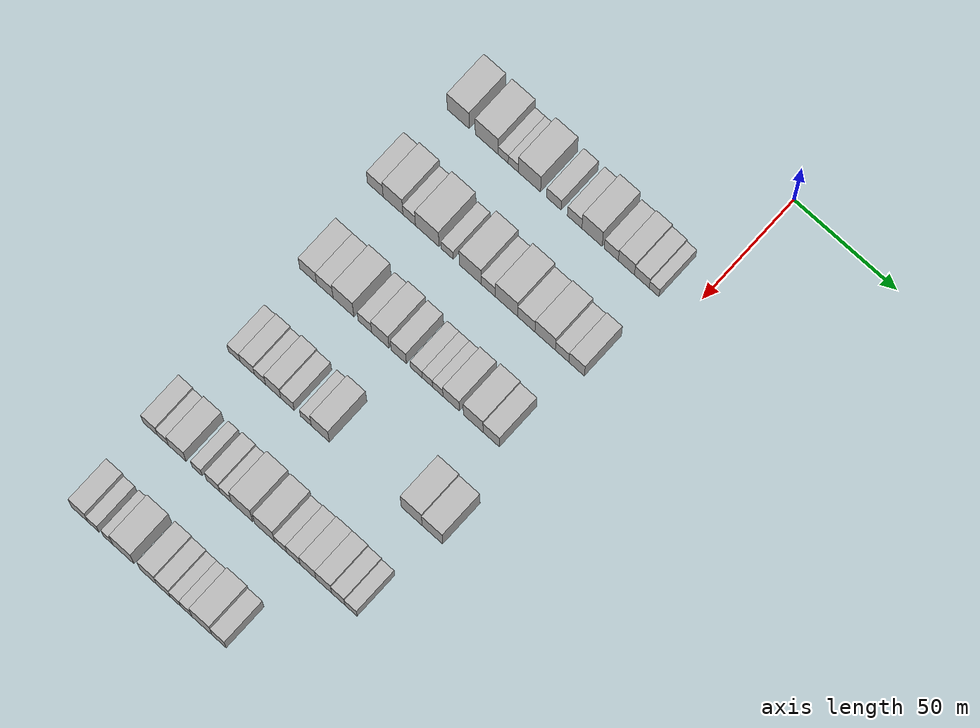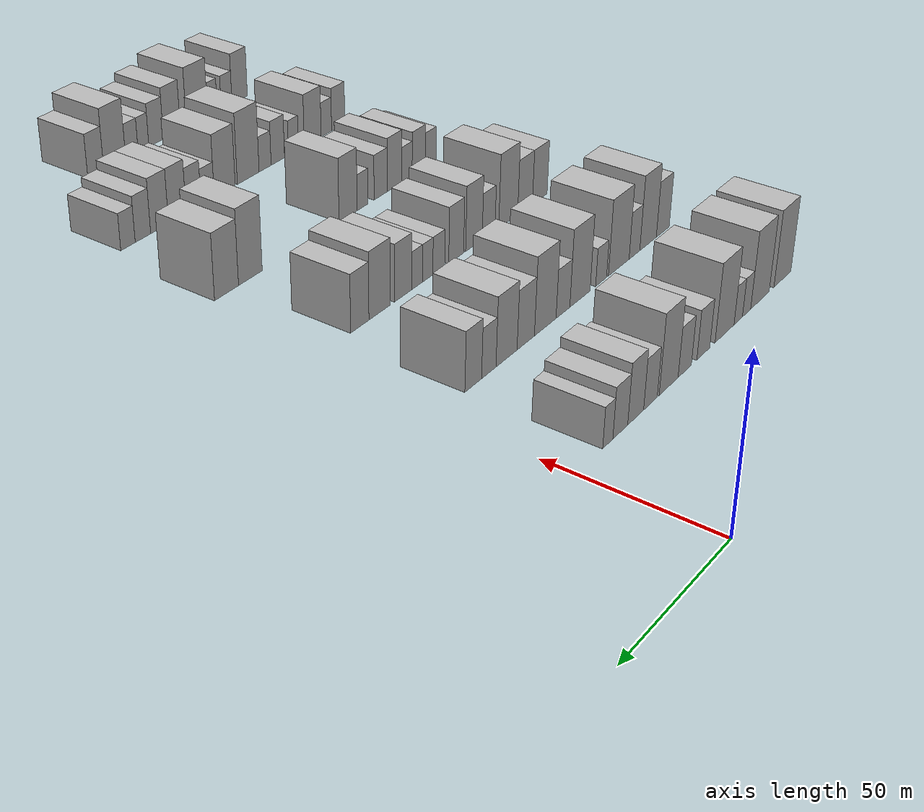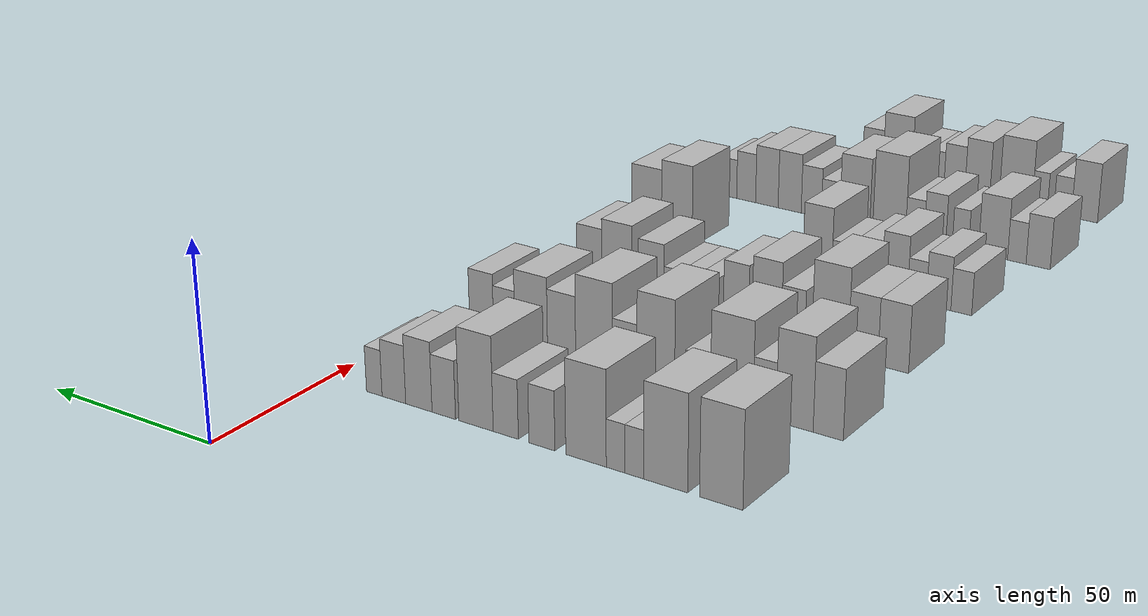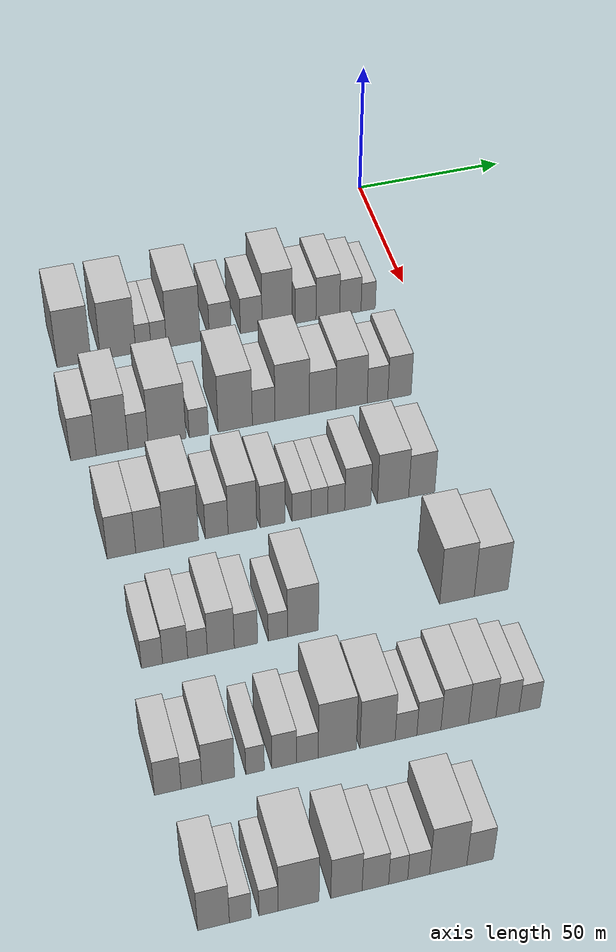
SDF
<sdf version="1.6">
 <world name="default">
  <model name="building_54">
   <static>1</static>
   <pose>50.0000 -111.0448 0 0.000000 0.000000 0.000000</pose>
   <link name="link">
    <pose>0 0 12.00 0 0 0</pose>
    <collision name="collision"><geometry><box><size>20.0000 10.8428 24.0000</size></box></geometry></collision>
    <visual name="visual">
     <cast_shadows>0</cast_shadows>
     <geometry><box><size>20.0000 10.8428 24.0000</size></box></geometry>
     <material>
      <script>
       <uri>model://HANNAS_wall/materials/scripts</uri>
       <uri>model://HANNAS_wall/materials/textures</uri>
       <name>vrc/HANNAS_wall</name>
      </script>
     </material>
    </visual>
   </link>
  </model>
  <model name="building_55">
   <static>1</static>
   <pose>50.0000 -96.9355 0 0.000000 0.000000 0.000000</pose>
   <link name="link">
    <pose>0 0 12.00 0 0 0</pose>
    <collision name="collision"><geometry><box><size>20.0000 11.3757 24.0000</size></box></geometry></collision>
    <visual name="visual">
     <cast_shadows>0</cast_shadows>
     <geometry><box><size>20.0000 11.3757 24.0000</size></box></geometry>
     <material>
      <script>
       <uri>model://HANNAS_wall/materials/scripts</uri>
       <uri>model://HANNAS_wall/materials/textures</uri>
       <name>vrc/HANNAS_wall</name>
      </script>
     </material>
    </visual>
   </link>
  </model>
  <model name="building_56">
   <static>1</static>
   <pose>50.0000 -88.7897 0 0.000000 0.000000 0.000000</pose>
   <link name="link">
    <pose>0 0 6.00 0 0 0</pose>
    <collision name="collision"><geometry><box><size>20.0000 4.9160 12.0000</size></box></geometry></collision>
    <visual name="visual">
     <cast_shadows>0</cast_shadows>
     <geometry><box><size>20.0000 4.9160 12.0000</size></box></geometry>
     <material>
      <script>
       <uri>model://HANNAS_wall/materials/scripts</uri>
       <uri>model://HANNAS_wall/materials/textures</uri>
       <name>vrc/HANNAS_wall</name>
      </script>
     </material>
    </visual>
   </link>
  </model>
  <model name="building_57">
   <static>1</static>
   <pose>50.0000 -83.8516 0 0.000000 0.000000 0.000000</pose>
   <link name="link">
    <pose>0 0 6.00 0 0 0</pose>
    <collision name="collision"><geometry><box><size>20.0000 4.9602 12.0000</size></box></geometry></collision>
    <visual name="visual">
     <cast_shadows>0</cast_shadows>
     <geometry><box><size>20.0000 4.9602 12.0000</size></box></geometry>
     <material>
      <script>
       <uri>model://HANNAS_wall/materials/scripts</uri>
       <uri>model://HANNAS_wall/materials/textures</uri>
       <name>vrc/HANNAS_wall</name>
      </script>
     </material>
    </visual>
   </link>
  </model>
  <model name="building_58">
   <static>1</static>
   <pose>50.0000 -75.8933 0 0.000000 0.000000 0.000000</pose>
   <link name="link">
    <pose>0 0 12.00 0 0 0</pose>
    <collision name="collision"><geometry><box><size>20.0000 10.9565 24.0000</size></box></geometry></collision>
    <visual name="visual">
     <cast_shadows>0</cast_shadows>
     <geometry><box><size>20.0000 10.9565 24.0000</size></box></geometry>
     <material>
      <script>
       <uri>model://HANNAS_wall/materials/scripts</uri>
       <uri>model://HANNAS_wall/materials/textures</uri>
       <name>vrc/HANNAS_wall</name>
      </script>
     </material>
    </visual>
   </link>
  </model>
  <model name="building_59">
   <static>1</static>
   <pose>50.0000 -63.8269 0 0.000000 0.000000 0.000000</pose>
   <link name="link">
    <pose>0 0 7.50 0 0 0</pose>
    <collision name="collision"><geometry><box><size>20.0000 7.1763 15.0000</size></box></geometry></collision>
    <visual name="visual">
     <cast_shadows>0</cast_shadows>
     <geometry><box><size>20.0000 7.1763 15.0000</size></box></geometry>
     <material>
      <script>
       <uri>model://HANNAS_wall/materials/scripts</uri>
       <uri>model://HANNAS_wall/materials/textures</uri>
       <name>vrc/HANNAS_wall</name>
      </script>
     </material>
    </visual>
   </link>
  </model>
  <model name="building_60">
   <static>1</static>
   <pose>50.0000 -53.6704 0 0.000000 0.000000 0.000000</pose>
   <link name="link">
    <pose>0 0 7.50 0 0 0</pose>
    <collision name="collision"><geometry><box><size>20.0000 7.1367 15.0000</size></box></geometry></collision>
    <visual name="visual">
     <cast_shadows>0</cast_shadows>
     <geometry><box><size>20.0000 7.1367 15.0000</size></box></geometry>
     <material>
      <script>
       <uri>model://HANNAS_wall/materials/scripts</uri>
       <uri>model://HANNAS_wall/materials/textures</uri>
       <name>vrc/HANNAS_wall</name>
      </script>
     </material>
    </visual>
   </link>
  </model>
  <model name="building_61">
   <static>1</static>
   <pose>50.0000 -45.1412 0 0.000000 0.000000 0.000000</pose>
   <link name="link">
    <pose>0 0 12.00 0 0 0</pose>
    <collision name="collision"><geometry><box><size>20.0000 9.9217 24.0000</size></box></geometry></collision>
    <visual name="visual">
     <cast_shadows>0</cast_shadows>
     <geometry><box><size>20.0000 9.9217 24.0000</size></box></geometry>
     <material>
      <script>
       <uri>model://HANNAS_wall/materials/scripts</uri>
       <uri>model://HANNAS_wall/materials/textures</uri>
       <name>vrc/HANNAS_wall</name>
      </script>
     </material>
    </visual>
   </link>
  </model>
  <model name="building_62">
   <static>1</static>
   <pose>50.0000 -35.7157 0 0.000000 0.000000 0.000000</pose>
   <link name="link">
    <pose>0 0 7.50 0 0 0</pose>
    <collision name="collision"><geometry><box><size>20.0000 6.9293 15.0000</size></box></geometry></collision>
    <visual name="visual">
     <cast_shadows>0</cast_shadows>
     <geometry><box><size>20.0000 6.9293 15.0000</size></box></geometry>
     <material>
      <script>
       <uri>model://HANNAS_wall/materials/scripts</uri>
       <uri>model://HANNAS_wall/materials/textures</uri>
       <name>vrc/HANNAS_wall</name>
      </script>
     </material>
    </visual>
   </link>
  </model>
  <model name="building_63">
   <static>1</static>
   <pose>50.0000 -28.3047 0 0.000000 0.000000 0.000000</pose>
   <link name="link">
    <pose>0 0 9.00 0 0 0</pose>
    <collision name="collision"><geometry><box><size>20.0000 7.8925 18.0000</size></box></geometry></collision>
    <visual name="visual">
     <cast_shadows>0</cast_shadows>
     <geometry><box><size>20.0000 7.8925 18.0000</size></box></geometry>
     <material>
      <script>
       <uri>model://HANNAS_wall/materials/scripts</uri>
       <uri>model://HANNAS_wall/materials/textures</uri>
       <name>vrc/HANNAS_wall</name>
      </script>
     </material>
    </visual>
   </link>
  </model>
  <model name="building_64">
   <static>1</static>
   <pose>50.0000 -20.7568 0 0.000000 0.000000 0.000000</pose>
   <link name="link">
    <pose>0 0 7.50 0 0 0</pose>
    <collision name="collision"><geometry><box><size>20.0000 7.2033 15.0000</size></box></geometry></collision>
    <visual name="visual">
     <cast_shadows>0</cast_shadows>
     <geometry><box><size>20.0000 7.2033 15.0000</size></box></geometry>
     <material>
      <script>
       <uri>model://HANNAS_wall/materials/scripts</uri>
       <uri>model://HANNAS_wall/materials/textures</uri>
       <name>vrc/HANNAS_wall</name>
      </script>
     </material>
    </visual>
   </link>
  </model>
  <model name="building_65">
   <static>1</static>
   <pose>50.0000 -14.7513 0 0.000000 0.000000 0.000000</pose>
   <link name="link">
    <pose>0 0 6.00 0 0 0</pose>
    <collision name="collision"><geometry><box><size>20.0000 4.8078 12.0000</size></box></geometry></collision>
    <visual name="visual">
     <cast_shadows>0</cast_shadows>
     <geometry><box><size>20.0000 4.8078 12.0000</size></box></geometry>
     <material>
      <script>
       <uri>model://HANNAS_wall/materials/scripts</uri>
       <uri>model://HANNAS_wall/materials/textures</uri>
       <name>vrc/HANNAS_wall</name>
      </script>
     </material>
    </visual>
   </link>
  </model>
  <model name="building_196">
   <static>1</static>
   <pose>90.0000 -115.4978 0 0.000000 0.000000 0.000000</pose>
   <link name="link">
    <pose>0 0 9.00 0 0 0</pose>
    <collision name="collision"><geometry><box><size>20.0000 7.7908 18.0000</size></box></geometry></collision>
    <visual name="visual">
     <cast_shadows>0</cast_shadows>
     <geometry><box><size>20.0000 7.7908 18.0000</size></box></geometry>
     <material>
      <script>
       <uri>model://HANNAS_wall/materials/scripts</uri>
       <uri>model://HANNAS_wall/materials/textures</uri>
       <name>vrc/HANNAS_wall</name>
      </script>
     </material>
    </visual>
   </link>
  </model>
  <model name="building_197">
   <static>1</static>
   <pose>90.0000 -106.7278 0 0.000000 0.000000 0.000000</pose>
   <link name="link">
    <pose>0 0 12.00 0 0 0</pose>
    <collision name="collision"><geometry><box><size>20.0000 9.7493 24.0000</size></box></geometry></collision>
    <visual name="visual">
     <cast_shadows>0</cast_shadows>
     <geometry><box><size>20.0000 9.7493 24.0000</size></box></geometry>
     <material>
      <script>
       <uri>model://HANNAS_wall/materials/scripts</uri>
       <uri>model://HANNAS_wall/materials/textures</uri>
       <name>vrc/HANNAS_wall</name>
      </script>
     </material>
    </visual>
   </link>
  </model>
  <model name="building_198">
   <static>1</static>
   <pose>90.0000 -98.7552 0 0.000000 0.000000 0.000000</pose>
   <link name="link">
    <pose>0 0 7.50 0 0 0</pose>
    <collision name="collision"><geometry><box><size>20.0000 6.1960 15.0000</size></box></geometry></collision>
    <visual name="visual">
     <cast_shadows>0</cast_shadows>
     <geometry><box><size>20.0000 6.1960 15.0000</size></box></geometry>
     <material>
      <script>
       <uri>model://HANNAS_wall/materials/scripts</uri>
       <uri>model://HANNAS_wall/materials/textures</uri>
       <name>vrc/HANNAS_wall</name>
      </script>
     </material>
    </visual>
   </link>
  </model>
  <model name="building_199">
   <static>1</static>
   <pose>90.0000 -89.8446 0 0.000000 0.000000 0.000000</pose>
   <link name="link">
    <pose>0 0 12.00 0 0 0</pose>
    <collision name="collision"><geometry><box><size>20.0000 11.6251 24.0000</size></box></geometry></collision>
    <visual name="visual">
     <cast_shadows>0</cast_shadows>
     <geometry><box><size>20.0000 11.6251 24.0000</size></box></geometry>
     <material>
      <script>
       <uri>model://HANNAS_wall/materials/scripts</uri>
       <uri>model://HANNAS_wall/materials/textures</uri>
       <name>vrc/HANNAS_wall</name>
      </script>
     </material>
    </visual>
   </link>
  </model>
  <model name="building_200">
   <static>1</static>
   <pose>90.0000 -80.0395 0 0.000000 0.000000 0.000000</pose>
   <link name="link">
    <pose>0 0 6.00 0 0 0</pose>
    <collision name="collision"><geometry><box><size>20.0000 5.9850 12.0000</size></box></geometry></collision>
    <visual name="visual">
     <cast_shadows>0</cast_shadows>
     <geometry><box><size>20.0000 5.9850 12.0000</size></box></geometry>
     <material>
      <script>
       <uri>model://HANNAS_wall/materials/scripts</uri>
       <uri>model://HANNAS_wall/materials/textures</uri>
       <name>vrc/HANNAS_wall</name>
      </script>
     </material>
    </visual>
   </link>
  </model>
  <model name="building_201">
   <static>1</static>
   <pose>90.0000 -68.6933 0 0.000000 0.000000 0.000000</pose>
   <link name="link">
    <pose>0 0 12.00 0 0 0</pose>
    <collision name="collision"><geometry><box><size>20.0000 10.7074 24.0000</size></box></geometry></collision>
    <visual name="visual">
     <cast_shadows>0</cast_shadows>
     <geometry><box><size>20.0000 10.7074 24.0000</size></box></geometry>
     <material>
      <script>
       <uri>model://HANNAS_wall/materials/scripts</uri>
       <uri>model://HANNAS_wall/materials/textures</uri>
       <name>vrc/HANNAS_wall</name>
      </script>
     </material>
    </visual>
   </link>
  </model>
  <model name="building_202">
   <static>1</static>
   <pose>90.0000 -59.7855 0 0.000000 0.000000 0.000000</pose>
   <link name="link">
    <pose>0 0 7.50 0 0 0</pose>
    <collision name="collision"><geometry><box><size>20.0000 7.1082 15.0000</size></box></geometry></collision>
    <visual name="visual">
     <cast_shadows>0</cast_shadows>
     <geometry><box><size>20.0000 7.1082 15.0000</size></box></geometry>
     <material>
      <script>
       <uri>model://HANNAS_wall/materials/scripts</uri>
       <uri>model://HANNAS_wall/materials/textures</uri>
       <name>vrc/HANNAS_wall</name>
      </script>
     </material>
    </visual>
   </link>
  </model>
  <model name="building_203">
   <static>1</static>
   <pose>90.0000 -50.8051 0 0.000000 0.000000 0.000000</pose>
   <link name="link">
    <pose>0 0 12.00 0 0 0</pose>
    <collision name="collision"><geometry><box><size>20.0000 10.8525 24.0000</size></box></geometry></collision>
    <visual name="visual">
     <cast_shadows>0</cast_shadows>
     <geometry><box><size>20.0000 10.8525 24.0000</size></box></geometry>
     <material>
      <script>
       <uri>model://HANNAS_wall/materials/scripts</uri>
       <uri>model://HANNAS_wall/materials/textures</uri>
       <name>vrc/HANNAS_wall</name>
      </script>
     </material>
    </visual>
   </link>
  </model>
  <model name="building_204">
   <static>1</static>
   <pose>90.0000 -41.1457 0 0.000000 0.000000 0.000000</pose>
   <link name="link">
    <pose>0 0 9.00 0 0 0</pose>
    <collision name="collision"><geometry><box><size>20.0000 8.4663 18.0000</size></box></geometry></collision>
    <visual name="visual">
     <cast_shadows>0</cast_shadows>
     <geometry><box><size>20.0000 8.4663 18.0000</size></box></geometry>
     <material>
      <script>
       <uri>model://HANNAS_wall/materials/scripts</uri>
       <uri>model://HANNAS_wall/materials/textures</uri>
       <name>vrc/HANNAS_wall</name>
      </script>
     </material>
    </visual>
   </link>
  </model>
  <model name="building_205">
   <static>1</static>
   <pose>90.0000 -31.9233 0 0.000000 0.000000 0.000000</pose>
   <link name="link">
    <pose>0 0 10.50 0 0 0</pose>
    <collision name="collision"><geometry><box><size>20.0000 9.9786 21.0000</size></box></geometry></collision>
    <visual name="visual">
     <cast_shadows>0</cast_shadows>
     <geometry><box><size>20.0000 9.9786 21.0000</size></box></geometry>
     <material>
      <script>
       <uri>model://HANNAS_wall/materials/scripts</uri>
       <uri>model://HANNAS_wall/materials/textures</uri>
       <name>vrc/HANNAS_wall</name>
      </script>
     </material>
    </visual>
   </link>
  </model>
  <model name="building_206">
   <static>1</static>
   <pose>90.0000 -23.6068 0 0.000000 0.000000 0.000000</pose>
   <link name="link">
    <pose>0 0 7.50 0 0 0</pose>
    <collision name="collision"><geometry><box><size>20.0000 6.6543 15.0000</size></box></geometry></collision>
    <visual name="visual">
     <cast_shadows>0</cast_shadows>
     <geometry><box><size>20.0000 6.6543 15.0000</size></box></geometry>
     <material>
      <script>
       <uri>model://HANNAS_wall/materials/scripts</uri>
       <uri>model://HANNAS_wall/materials/textures</uri>
       <name>vrc/HANNAS_wall</name>
      </script>
     </material>
    </visual>
   </link>
  </model>
  <model name="building_207">
   <static>1</static>
   <pose>90.0000 -16.5090 0 0.000000 0.000000 0.000000</pose>
   <link name="link">
    <pose>0 0 9.00 0 0 0</pose>
    <collision name="collision"><geometry><box><size>20.0000 7.5413 18.0000</size></box></geometry></collision>
    <visual name="visual">
     <cast_shadows>0</cast_shadows>
     <geometry><box><size>20.0000 7.5413 18.0000</size></box></geometry>
     <material>
      <script>
       <uri>model://HANNAS_wall/materials/scripts</uri>
       <uri>model://HANNAS_wall/materials/textures</uri>
       <name>vrc/HANNAS_wall</name>
      </script>
     </material>
    </visual>
   </link>
  </model>
  <model name="building_333">
   <static>1</static>
   <pose>130.0000 -111.9300 0 0.000000 0.000000 0.000000</pose>
   <link name="link">
    <pose>0 0 9.00 0 0 0</pose>
    <collision name="collision"><geometry><box><size>20.0000 8.3504 18.0000</size></box></geometry></collision>
    <visual name="visual">
     <cast_shadows>0</cast_shadows>
     <geometry><box><size>20.0000 8.3504 18.0000</size></box></geometry>
     <material>
      <script>
       <uri>model://HANNAS_wall/materials/scripts</uri>
       <uri>model://HANNAS_wall/materials/textures</uri>
       <name>vrc/HANNAS_wall</name>
      </script>
     </material>
    </visual>
   </link>
  </model>
  <model name="building_334">
   <static>1</static>
   <pose>130.0000 -103.6656 0 0.000000 0.000000 0.000000</pose>
   <link name="link">
    <pose>0 0 9.00 0 0 0</pose>
    <collision name="collision"><geometry><box><size>20.0000 8.1784 18.0000</size></box></geometry></collision>
    <visual name="visual">
     <cast_shadows>0</cast_shadows>
     <geometry><box><size>20.0000 8.1784 18.0000</size></box></geometry>
     <material>
      <script>
       <uri>model://HANNAS_wall/materials/scripts</uri>
       <uri>model://HANNAS_wall/materials/textures</uri>
       <name>vrc/HANNAS_wall</name>
      </script>
     </material>
    </visual>
   </link>
  </model>
  <model name="building_335">
   <static>1</static>
   <pose>130.0000 -94.4496 0 0.000000 0.000000 0.000000</pose>
   <link name="link">
    <pose>0 0 12.00 0 0 0</pose>
    <collision name="collision"><geometry><box><size>20.0000 10.2536 24.0000</size></box></geometry></collision>
    <visual name="visual">
     <cast_shadows>0</cast_shadows>
     <geometry><box><size>20.0000 10.2536 24.0000</size></box></geometry>
     <material>
      <script>
       <uri>model://HANNAS_wall/materials/scripts</uri>
       <uri>model://HANNAS_wall/materials/textures</uri>
       <name>vrc/HANNAS_wall</name>
      </script>
     </material>
    </visual>
   </link>
  </model>
  <model name="building_336">
   <static>1</static>
   <pose>130.0000 -83.9489 0 0.000000 0.000000 0.000000</pose>
   <link name="link">
    <pose>0 0 7.50 0 0 0</pose>
    <collision name="collision"><geometry><box><size>20.0000 6.7476 15.0000</size></box></geometry></collision>
    <visual name="visual">
     <cast_shadows>0</cast_shadows>
     <geometry><box><size>20.0000 6.7476 15.0000</size></box></geometry>
     <material>
      <script>
       <uri>model://HANNAS_wall/materials/scripts</uri>
       <uri>model://HANNAS_wall/materials/textures</uri>
       <name>vrc/HANNAS_wall</name>
      </script>
     </material>
    </visual>
   </link>
  </model>
  <model name="building_337">
   <static>1</static>
   <pose>130.0000 -76.3089 0 0.000000 0.000000 0.000000</pose>
   <link name="link">
    <pose>0 0 10.50 0 0 0</pose>
    <collision name="collision"><geometry><box><size>20.0000 8.5325 21.0000</size></box></geometry></collision>
    <visual name="visual">
     <cast_shadows>0</cast_shadows>
     <geometry><box><size>20.0000 8.5325 21.0000</size></box></geometry>
     <material>
      <script>
       <uri>model://HANNAS_wall/materials/scripts</uri>
       <uri>model://HANNAS_wall/materials/textures</uri>
       <name>vrc/HANNAS_wall</name>
      </script>
     </material>
    </visual>
   </link>
  </model>
  <model name="building_338">
   <static>1</static>
   <pose>130.0000 -67.2926 0 0.000000 0.000000 0.000000</pose>
   <link name="link">
    <pose>0 0 9.00 0 0 0</pose>
    <collision name="collision"><geometry><box><size>20.0000 7.5001 18.0000</size></box></geometry></collision>
    <visual name="visual">
     <cast_shadows>0</cast_shadows>
     <geometry><box><size>20.0000 7.5001 18.0000</size></box></geometry>
     <material>
      <script>
       <uri>model://HANNAS_wall/materials/scripts</uri>
       <uri>model://HANNAS_wall/materials/textures</uri>
       <name>vrc/HANNAS_wall</name>
      </script>
     </material>
    </visual>
   </link>
  </model>
  <model name="building_339">
   <static>1</static>
   <pose>130.0000 -58.6385 0 0.000000 0.000000 0.000000</pose>
   <link name="link">
    <pose>0 0 6.00 0 0 0</pose>
    <collision name="collision"><geometry><box><size>20.0000 5.8081 12.0000</size></box></geometry></collision>
    <visual name="visual">
     <cast_shadows>0</cast_shadows>
     <geometry><box><size>20.0000 5.8081 12.0000</size></box></geometry>
     <material>
      <script>
       <uri>model://HANNAS_wall/materials/scripts</uri>
       <uri>model://HANNAS_wall/materials/textures</uri>
       <name>vrc/HANNAS_wall</name>
      </script>
     </material>
    </visual>
   </link>
  </model>
  <model name="building_340">
   <static>1</static>
   <pose>130.0000 -53.2350 0 0.000000 0.000000 0.000000</pose>
   <link name="link">
    <pose>0 0 6.00 0 0 0</pose>
    <collision name="collision"><geometry><box><size>20.0000 4.9991 12.0000</size></box></geometry></collision>
    <visual name="visual">
     <cast_shadows>0</cast_shadows>
     <geometry><box><size>20.0000 4.9991 12.0000</size></box></geometry>
     <material>
      <script>
       <uri>model://HANNAS_wall/materials/scripts</uri>
       <uri>model://HANNAS_wall/materials/textures</uri>
       <name>vrc/HANNAS_wall</name>
      </script>
     </material>
    </visual>
   </link>
  </model>
  <model name="building_341">
   <static>1</static>
   <pose>130.0000 -48.1596 0 0.000000 0.000000 0.000000</pose>
   <link name="link">
    <pose>0 0 6.00 0 0 0</pose>
    <collision name="collision"><geometry><box><size>20.0000 5.1517 12.0000</size></box></geometry></collision>
    <visual name="visual">
     <cast_shadows>0</cast_shadows>
     <geometry><box><size>20.0000 5.1517 12.0000</size></box></geometry>
     <material>
      <script>
       <uri>model://HANNAS_wall/materials/scripts</uri>
       <uri>model://HANNAS_wall/materials/textures</uri>
       <name>vrc/HANNAS_wall</name>
      </script>
     </material>
    </visual>
   </link>
  </model>
  <model name="building_342">
   <static>1</static>
   <pose>130.0000 -41.5993 0 0.000000 0.000000 0.000000</pose>
   <link name="link">
    <pose>0 0 9.00 0 0 0</pose>
    <collision name="collision"><geometry><box><size>20.0000 7.9688 18.0000</size></box></geometry></collision>
    <visual name="visual">
     <cast_shadows>0</cast_shadows>
     <geometry><box><size>20.0000 7.9688 18.0000</size></box></geometry>
     <material>
      <script>
       <uri>model://HANNAS_wall/materials/scripts</uri>
       <uri>model://HANNAS_wall/materials/textures</uri>
       <name>vrc/HANNAS_wall</name>
      </script>
     </material>
    </visual>
   </link>
  </model>
  <model name="building_343">
   <static>1</static>
   <pose>130.0000 -30.8135 0 0.000000 0.000000 0.000000</pose>
   <link name="link">
    <pose>0 0 10.50 0 0 0</pose>
    <collision name="collision"><geometry><box><size>20.0000 9.6029 21.0000</size></box></geometry></collision>
    <visual name="visual">
     <cast_shadows>0</cast_shadows>
     <geometry><box><size>20.0000 9.6029 21.0000</size></box></geometry>
     <material>
      <script>
       <uri>model://HANNAS_wall/materials/scripts</uri>
       <uri>model://HANNAS_wall/materials/textures</uri>
       <name>vrc/HANNAS_wall</name>
      </script>
     </material>
    </visual>
   </link>
  </model>
  <model name="building_344">
   <static>1</static>
   <pose>130.0000 -21.9859 0 0.000000 0.000000 0.000000</pose>
   <link name="link">
    <pose>0 0 9.00 0 0 0</pose>
    <collision name="collision"><geometry><box><size>20.0000 8.0523 18.0000</size></box></geometry></collision>
    <visual name="visual">
     <cast_shadows>0</cast_shadows>
     <geometry><box><size>20.0000 8.0523 18.0000</size></box></geometry>
     <material>
      <script>
       <uri>model://HANNAS_wall/materials/scripts</uri>
       <uri>model://HANNAS_wall/materials/textures</uri>
       <name>vrc/HANNAS_wall</name>
      </script>
     </material>
    </visual>
   </link>
  </model>
  <model name="building_469">
   <static>1</static>
   <pose>170.0000 -111.5075 0 0.000000 0.000000 0.000000</pose>
   <link name="link">
    <pose>0 0 6.00 0 0 0</pose>
    <collision name="collision"><geometry><box><size>20.0000 5.8818 12.0000</size></box></geometry></collision>
    <visual name="visual">
     <cast_shadows>0</cast_shadows>
     <geometry><box><size>20.0000 5.8818 12.0000</size></box></geometry>
     <material>
      <script>
       <uri>model://HANNAS_wall/materials/scripts</uri>
       <uri>model://HANNAS_wall/materials/textures</uri>
       <name>vrc/HANNAS_wall</name>
      </script>
     </material>
    </visual>
   </link>
  </model>
  <model name="building_470">
   <static>1</static>
   <pose>170.0000 -105.0584 0 0.000000 0.000000 0.000000</pose>
   <link name="link">
    <pose>0 0 7.50 0 0 0</pose>
    <collision name="collision"><geometry><box><size>20.0000 7.0163 15.0000</size></box></geometry></collision>
    <visual name="visual">
     <cast_shadows>0</cast_shadows>
     <geometry><box><size>20.0000 7.0163 15.0000</size></box></geometry>
     <material>
      <script>
       <uri>model://HANNAS_wall/materials/scripts</uri>
       <uri>model://HANNAS_wall/materials/textures</uri>
       <name>vrc/HANNAS_wall</name>
      </script>
     </material>
    </visual>
   </link>
  </model>
  <model name="building_471">
   <static>1</static>
   <pose>170.0000 -98.8064 0 0.000000 0.000000 0.000000</pose>
   <link name="link">
    <pose>0 0 6.00 0 0 0</pose>
    <collision name="collision"><geometry><box><size>20.0000 5.4877 12.0000</size></box></geometry></collision>
    <visual name="visual">
     <cast_shadows>0</cast_shadows>
     <geometry><box><size>20.0000 5.4877 12.0000</size></box></geometry>
     <material>
      <script>
       <uri>model://HANNAS_wall/materials/scripts</uri>
       <uri>model://HANNAS_wall/materials/textures</uri>
       <name>vrc/HANNAS_wall</name>
      </script>
     </material>
    </visual>
   </link>
  </model>
  <model name="building_472">
   <static>1</static>
   <pose>170.0000 -92.2743 0 0.000000 0.000000 0.000000</pose>
   <link name="link">
    <pose>0 0 9.00 0 0 0</pose>
    <collision name="collision"><geometry><box><size>20.0000 7.5765 18.0000</size></box></geometry></collision>
    <visual name="visual">
     <cast_shadows>0</cast_shadows>
     <geometry><box><size>20.0000 7.5765 18.0000</size></box></geometry>
     <material>
      <script>
       <uri>model://HANNAS_wall/materials/scripts</uri>
       <uri>model://HANNAS_wall/materials/textures</uri>
       <name>vrc/HANNAS_wall</name>
      </script>
     </material>
    </visual>
   </link>
  </model>
  <model name="building_473">
   <static>1</static>
   <pose>170.0000 -85.1839 0 0.000000 0.000000 0.000000</pose>
   <link name="link">
    <pose>0 0 7.50 0 0 0</pose>
    <collision name="collision"><geometry><box><size>20.0000 6.6042 15.0000</size></box></geometry></collision>
    <visual name="visual">
     <cast_shadows>0</cast_shadows>
     <geometry><box><size>20.0000 6.6042 15.0000</size></box></geometry>
     <material>
      <script>
       <uri>model://HANNAS_wall/materials/scripts</uri>
       <uri>model://HANNAS_wall/materials/textures</uri>
       <name>vrc/HANNAS_wall</name>
      </script>
     </material>
    </visual>
   </link>
  </model>
  <model name="building_474">
   <static>1</static>
   <pose>170.0000 -76.1636 0 0.000000 0.000000 0.000000</pose>
   <link name="link">
    <pose>0 0 6.00 0 0 0</pose>
    <collision name="collision"><geometry><box><size>20.0000 5.4364 12.0000</size></box></geometry></collision>
    <visual name="visual">
     <cast_shadows>0</cast_shadows>
     <geometry><box><size>20.0000 5.4364 12.0000</size></box></geometry>
     <material>
      <script>
       <uri>model://HANNAS_wall/materials/scripts</uri>
       <uri>model://HANNAS_wall/materials/textures</uri>
       <name>vrc/HANNAS_wall</name>
      </script>
     </material>
    </visual>
   </link>
  </model>
  <model name="building_475">
   <static>1</static>
   <pose>170.0000 -69.0302 0 0.000000 0.000000 0.000000</pose>
   <link name="link">
    <pose>0 0 10.50 0 0 0</pose>
    <collision name="collision"><geometry><box><size>20.0000 8.8306 21.0000</size></box></geometry></collision>
    <visual name="visual">
     <cast_shadows>0</cast_shadows>
     <geometry><box><size>20.0000 8.8306 21.0000</size></box></geometry>
     <material>
      <script>
       <uri>model://HANNAS_wall/materials/scripts</uri>
       <uri>model://HANNAS_wall/materials/textures</uri>
       <name>vrc/HANNAS_wall</name>
      </script>
     </material>
    </visual>
   </link>
  </model>
  <model name="building_476">
   <static>1</static>
   <pose>170.0000 -24.3343 0 0.000000 0.000000 0.000000</pose>
   <link name="link">
    <pose>0 0 12.00 0 0 0</pose>
    <collision name="collision"><geometry><box><size>20.0000 10.1871 24.0000</size></box></geometry></collision>
    <visual name="visual">
     <cast_shadows>0</cast_shadows>
     <geometry><box><size>20.0000 10.1871 24.0000</size></box></geometry>
     <material>
      <script>
       <uri>model://HANNAS_wall/materials/scripts</uri>
       <uri>model://HANNAS_wall/materials/textures</uri>
       <name>vrc/HANNAS_wall</name>
      </script>
     </material>
    </visual>
   </link>
  </model>
  <model name="building_477">
   <static>1</static>
   <pose>170.0000 -14.2351 0 0.000000 0.000000 0.000000</pose>
   <link name="link">
    <pose>0 0 10.50 0 0 0</pose>
    <collision name="collision"><geometry><box><size>20.0000 10.0113 21.0000</size></box></geometry></collision>
    <visual name="visual">
     <cast_shadows>0</cast_shadows>
     <geometry><box><size>20.0000 10.0113 21.0000</size></box></geometry>
     <material>
      <script>
       <uri>model://HANNAS_wall/materials/scripts</uri>
       <uri>model://HANNAS_wall/materials/textures</uri>
       <name>vrc/HANNAS_wall</name>
      </script>
     </material>
    </visual>
   </link>
  </model>
  <model name="building_601">
   <static>1</static>
   <pose>210.0000 -115.8443 0 0.000000 0.000000 0.000000</pose>
   <link name="link">
    <pose>0 0 7.50 0 0 0</pose>
    <collision name="collision"><geometry><box><size>20.0000 7.0165 15.0000</size></box></geometry></collision>
    <visual name="visual">
     <cast_shadows>0</cast_shadows>
     <geometry><box><size>20.0000 7.0165 15.0000</size></box></geometry>
     <material>
      <script>
       <uri>model://HANNAS_wall/materials/scripts</uri>
       <uri>model://HANNAS_wall/materials/textures</uri>
       <name>vrc/HANNAS_wall</name>
      </script>
     </material>
    </visual>
   </link>
  </model>
  <model name="building_602">
   <static>1</static>
   <pose>210.0000 -109.5901 0 0.000000 0.000000 0.000000</pose>
   <link name="link">
    <pose>0 0 6.00 0 0 0</pose>
    <collision name="collision"><geometry><box><size>20.0000 5.4920 12.0000</size></box></geometry></collision>
    <visual name="visual">
     <cast_shadows>0</cast_shadows>
     <geometry><box><size>20.0000 5.4920 12.0000</size></box></geometry>
     <material>
      <script>
       <uri>model://HANNAS_wall/materials/scripts</uri>
       <uri>model://HANNAS_wall/materials/textures</uri>
       <name>vrc/HANNAS_wall</name>
      </script>
     </material>
    </visual>
   </link>
  </model>
  <model name="building_603">
   <static>1</static>
   <pose>210.0000 -102.4994 0 0.000000 0.000000 0.000000</pose>
   <link name="link">
    <pose>0 0 9.00 0 0 0</pose>
    <collision name="collision"><geometry><box><size>20.0000 8.6893 18.0000</size></box></geometry></collision>
    <visual name="visual">
     <cast_shadows>0</cast_shadows>
     <geometry><box><size>20.0000 8.6893 18.0000</size></box></geometry>
     <material>
      <script>
       <uri>model://HANNAS_wall/materials/scripts</uri>
       <uri>model://HANNAS_wall/materials/textures</uri>
       <name>vrc/HANNAS_wall</name>
      </script>
     </material>
    </visual>
   </link>
  </model>
  <model name="building_604">
   <static>1</static>
   <pose>210.0000 -92.6704 0 0.000000 0.000000 0.000000</pose>
   <link name="link">
    <pose>0 0 6.00 0 0 0</pose>
    <collision name="collision"><geometry><box><size>20.0000 4.9688 12.0000</size></box></geometry></collision>
    <visual name="visual">
     <cast_shadows>0</cast_shadows>
     <geometry><box><size>20.0000 4.9688 12.0000</size></box></geometry>
     <material>
      <script>
       <uri>model://HANNAS_wall/materials/scripts</uri>
       <uri>model://HANNAS_wall/materials/textures</uri>
       <name>vrc/HANNAS_wall</name>
      </script>
     </material>
    </visual>
   </link>
  </model>
  <model name="building_605">
   <static>1</static>
   <pose>210.0000 -84.8742 0 0.000000 0.000000 0.000000</pose>
   <link name="link">
    <pose>0 0 7.50 0 0 0</pose>
    <collision name="collision"><geometry><box><size>20.0000 6.6235 15.0000</size></box></geometry></collision>
    <visual name="visual">
     <cast_shadows>0</cast_shadows>
     <geometry><box><size>20.0000 6.6235 15.0000</size></box></geometry>
     <material>
      <script>
       <uri>model://HANNAS_wall/materials/scripts</uri>
       <uri>model://HANNAS_wall/materials/textures</uri>
       <name>vrc/HANNAS_wall</name>
      </script>
     </material>
    </visual>
   </link>
  </model>
  <model name="building_606">
   <static>1</static>
   <pose>210.0000 -78.6387 0 0.000000 0.000000 0.000000</pose>
   <link name="link">
    <pose>0 0 6.00 0 0 0</pose>
    <collision name="collision"><geometry><box><size>20.0000 5.8475 12.0000</size></box></geometry></collision>
    <visual name="visual">
     <cast_shadows>0</cast_shadows>
     <geometry><box><size>20.0000 5.8475 12.0000</size></box></geometry>
     <material>
      <script>
       <uri>model://HANNAS_wall/materials/scripts</uri>
       <uri>model://HANNAS_wall/materials/textures</uri>
       <name>vrc/HANNAS_wall</name>
      </script>
     </material>
    </visual>
   </link>
  </model>
  <model name="building_607">
   <static>1</static>
   <pose>210.0000 -70.5305 0 0.000000 0.000000 0.000000</pose>
   <link name="link">
    <pose>0 0 12.00 0 0 0</pose>
    <collision name="collision"><geometry><box><size>20.0000 10.3689 24.0000</size></box></geometry></collision>
    <visual name="visual">
     <cast_shadows>0</cast_shadows>
     <geometry><box><size>20.0000 10.3689 24.0000</size></box></geometry>
     <material>
      <script>
       <uri>model://HANNAS_wall/materials/scripts</uri>
       <uri>model://HANNAS_wall/materials/textures</uri>
       <name>vrc/HANNAS_wall</name>
      </script>
     </material>
    </visual>
   </link>
  </model>
  <model name="building_608">
   <static>1</static>
   <pose>210.0000 -59.5267 0 0.000000 0.000000 0.000000</pose>
   <link name="link">
    <pose>0 0 10.50 0 0 0</pose>
    <collision name="collision"><geometry><box><size>20.0000 9.6385 21.0000</size></box></geometry></collision>
    <visual name="visual">
     <cast_shadows>0</cast_shadows>
     <geometry><box><size>20.0000 9.6385 21.0000</size></box></geometry>
     <material>
      <script>
       <uri>model://HANNAS_wall/materials/scripts</uri>
       <uri>model://HANNAS_wall/materials/textures</uri>
       <name>vrc/HANNAS_wall</name>
      </script>
     </material>
    </visual>
   </link>
  </model>
  <model name="building_609">
   <static>1</static>
   <pose>210.0000 -51.7162 0 0.000000 0.000000 0.000000</pose>
   <link name="link">
    <pose>0 0 6.00 0 0 0</pose>
    <collision name="collision"><geometry><box><size>20.0000 5.9825 12.0000</size></box></geometry></collision>
    <visual name="visual">
     <cast_shadows>0</cast_shadows>
     <geometry><box><size>20.0000 5.9825 12.0000</size></box></geometry>
     <material>
      <script>
       <uri>model://HANNAS_wall/materials/scripts</uri>
       <uri>model://HANNAS_wall/materials/textures</uri>
       <name>vrc/HANNAS_wall</name>
      </script>
     </material>
    </visual>
   </link>
  </model>
  <model name="building_610">
   <static>1</static>
   <pose>210.0000 -45.3934 0 0.000000 0.000000 0.000000</pose>
   <link name="link">
    <pose>0 0 7.50 0 0 0</pose>
    <collision name="collision"><geometry><box><size>20.0000 6.6630 15.0000</size></box></geometry></collision>
    <visual name="visual">
     <cast_shadows>0</cast_shadows>
     <geometry><box><size>20.0000 6.6630 15.0000</size></box></geometry>
     <material>
      <script>
       <uri>model://HANNAS_wall/materials/scripts</uri>
       <uri>model://HANNAS_wall/materials/textures</uri>
       <name>vrc/HANNAS_wall</name>
      </script>
     </material>
    </visual>
   </link>
  </model>
  <model name="building_611">
   <static>1</static>
   <pose>210.0000 -38.2008 0 0.000000 0.000000 0.000000</pose>
   <link name="link">
    <pose>0 0 9.00 0 0 0</pose>
    <collision name="collision"><geometry><box><size>20.0000 7.7222 18.0000</size></box></geometry></collision>
    <visual name="visual">
     <cast_shadows>0</cast_shadows>
     <geometry><box><size>20.0000 7.7222 18.0000</size></box></geometry>
     <material>
      <script>
       <uri>model://HANNAS_wall/materials/scripts</uri>
       <uri>model://HANNAS_wall/materials/textures</uri>
       <name>vrc/HANNAS_wall</name>
      </script>
     </material>
    </visual>
   </link>
  </model>
  <model name="building_612">
   <static>1</static>
   <pose>210.0000 -30.5262 0 0.000000 0.000000 0.000000</pose>
   <link name="link">
    <pose>0 0 9.00 0 0 0</pose>
    <collision name="collision"><geometry><box><size>20.0000 7.6270 18.0000</size></box></geometry></collision>
    <visual name="visual">
     <cast_shadows>0</cast_shadows>
     <geometry><box><size>20.0000 7.6270 18.0000</size></box></geometry>
     <material>
      <script>
       <uri>model://HANNAS_wall/materials/scripts</uri>
       <uri>model://HANNAS_wall/materials/textures</uri>
       <name>vrc/HANNAS_wall</name>
      </script>
     </material>
    </visual>
   </link>
  </model>
  <model name="building_613">
   <static>1</static>
   <pose>210.0000 -23.4687 0 0.000000 0.000000 0.000000</pose>
   <link name="link">
    <pose>0 0 7.50 0 0 0</pose>
    <collision name="collision"><geometry><box><size>20.0000 6.4880 15.0000</size></box></geometry></collision>
    <visual name="visual">
     <cast_shadows>0</cast_shadows>
     <geometry><box><size>20.0000 6.4880 15.0000</size></box></geometry>
     <material>
      <script>
       <uri>model://HANNAS_wall/materials/scripts</uri>
       <uri>model://HANNAS_wall/materials/textures</uri>
       <name>vrc/HANNAS_wall</name>
      </script>
     </material>
    </visual>
   </link>
  </model>
  <model name="building_614">
   <static>1</static>
   <pose>210.0000 -17.2523 0 0.000000 0.000000 0.000000</pose>
   <link name="link">
    <pose>0 0 6.00 0 0 0</pose>
    <collision name="collision"><geometry><box><size>20.0000 5.9448 12.0000</size></box></geometry></collision>
    <visual name="visual">
     <cast_shadows>0</cast_shadows>
     <geometry><box><size>20.0000 5.9448 12.0000</size></box></geometry>
     <material>
      <script>
       <uri>model://HANNAS_wall/materials/scripts</uri>
       <uri>model://HANNAS_wall/materials/textures</uri>
       <name>vrc/HANNAS_wall</name>
      </script>
     </material>
    </visual>
   </link>
  </model>
  <model name="building_744">
   <static>1</static>
   <pose>250.0000 -113.1818 0 0.000000 0.000000 0.000000</pose>
   <link name="link">
    <pose>0 0 9.00 0 0 0</pose>
    <collision name="collision"><geometry><box><size>20.0000 7.9476 18.0000</size></box></geometry></collision>
    <visual name="visual">
     <cast_shadows>0</cast_shadows>
     <geometry><box><size>20.0000 7.9476 18.0000</size></box></geometry>
     <material>
      <script>
       <uri>model://HANNAS_wall/materials/scripts</uri>
       <uri>model://HANNAS_wall/materials/textures</uri>
       <name>vrc/HANNAS_wall</name>
      </script>
     </material>
    </visual>
   </link>
  </model>
  <model name="building_745">
   <static>1</static>
   <pose>250.0000 -106.4795 0 0.000000 0.000000 0.000000</pose>
   <link name="link">
    <pose>0 0 6.00 0 0 0</pose>
    <collision name="collision"><geometry><box><size>20.0000 5.4569 12.0000</size></box></geometry></collision>
    <visual name="visual">
     <cast_shadows>0</cast_shadows>
     <geometry><box><size>20.0000 5.4569 12.0000</size></box></geometry>
     <material>
      <script>
       <uri>model://HANNAS_wall/materials/scripts</uri>
       <uri>model://HANNAS_wall/materials/textures</uri>
       <name>vrc/HANNAS_wall</name>
      </script>
     </material>
    </visual>
   </link>
  </model>
  <model name="building_746">
   <static>1</static>
   <pose>250.0000 -99.3427 0 0.000000 0.000000 0.000000</pose>
   <link name="link">
    <pose>0 0 6.00 0 0 0</pose>
    <collision name="collision"><geometry><box><size>20.0000 4.8167 12.0000</size></box></geometry></collision>
    <visual name="visual">
     <cast_shadows>0</cast_shadows>
     <geometry><box><size>20.0000 4.8167 12.0000</size></box></geometry>
     <material>
      <script>
       <uri>model://HANNAS_wall/materials/scripts</uri>
       <uri>model://HANNAS_wall/materials/textures</uri>
       <name>vrc/HANNAS_wall</name>
      </script>
     </material>
    </visual>
   </link>
  </model>
  <model name="building_747">
   <static>1</static>
   <pose>250.0000 -91.7367 0 0.000000 0.000000 0.000000</pose>
   <link name="link">
    <pose>0 0 10.50 0 0 0</pose>
    <collision name="collision"><geometry><box><size>20.0000 10.3954 21.0000</size></box></geometry></collision>
    <visual name="visual">
     <cast_shadows>0</cast_shadows>
     <geometry><box><size>20.0000 10.3954 21.0000</size></box></geometry>
     <material>
      <script>
       <uri>model://HANNAS_wall/materials/scripts</uri>
       <uri>model://HANNAS_wall/materials/textures</uri>
       <name>vrc/HANNAS_wall</name>
      </script>
     </material>
    </visual>
   </link>
  </model>
  <model name="building_748">
   <static>1</static>
   <pose>250.0000 -79.5216 0 0.000000 0.000000 0.000000</pose>
   <link name="link">
    <pose>0 0 9.00 0 0 0</pose>
    <collision name="collision"><geometry><box><size>20.0000 8.0347 18.0000</size></box></geometry></collision>
    <visual name="visual">
     <cast_shadows>0</cast_shadows>
     <geometry><box><size>20.0000 8.0347 18.0000</size></box></geometry>
     <material>
      <script>
       <uri>model://HANNAS_wall/materials/scripts</uri>
       <uri>model://HANNAS_wall/materials/textures</uri>
       <name>vrc/HANNAS_wall</name>
      </script>
     </material>
    </visual>
   </link>
  </model>
  <model name="building_749">
   <static>1</static>
   <pose>250.0000 -72.0773 0 0.000000 0.000000 0.000000</pose>
   <link name="link">
    <pose>0 0 7.50 0 0 0</pose>
    <collision name="collision"><geometry><box><size>20.0000 6.8540 15.0000</size></box></geometry></collision>
    <visual name="visual">
     <cast_shadows>0</cast_shadows>
     <geometry><box><size>20.0000 6.8540 15.0000</size></box></geometry>
     <material>
      <script>
       <uri>model://HANNAS_wall/materials/scripts</uri>
       <uri>model://HANNAS_wall/materials/textures</uri>
       <name>vrc/HANNAS_wall</name>
      </script>
     </material>
    </visual>
   </link>
  </model>
  <model name="building_750">
   <static>1</static>
   <pose>250.0000 -66.1777 0 0.000000 0.000000 0.000000</pose>
   <link name="link">
    <pose>0 0 6.00 0 0 0</pose>
    <collision name="collision"><geometry><box><size>20.0000 4.9451 12.0000</size></box></geometry></collision>
    <visual name="visual">
     <cast_shadows>0</cast_shadows>
     <geometry><box><size>20.0000 4.9451 12.0000</size></box></geometry>
     <material>
      <script>
       <uri>model://HANNAS_wall/materials/scripts</uri>
       <uri>model://HANNAS_wall/materials/textures</uri>
       <name>vrc/HANNAS_wall</name>
      </script>
     </material>
    </visual>
   </link>
  </model>
  <model name="building_751">
   <static>1</static>
   <pose>250.0000 -60.8622 0 0.000000 0.000000 0.000000</pose>
   <link name="link">
    <pose>0 0 6.00 0 0 0</pose>
    <collision name="collision"><geometry><box><size>20.0000 5.6860 12.0000</size></box></geometry></collision>
    <visual name="visual">
     <cast_shadows>0</cast_shadows>
     <geometry><box><size>20.0000 5.6860 12.0000</size></box></geometry>
     <material>
      <script>
       <uri>model://HANNAS_wall/materials/scripts</uri>
       <uri>model://HANNAS_wall/materials/textures</uri>
       <name>vrc/HANNAS_wall</name>
      </script>
     </material>
    </visual>
   </link>
  </model>
  <model name="building_752">
   <static>1</static>
   <pose>250.0000 -53.1428 0 0.000000 0.000000 0.000000</pose>
   <link name="link">
    <pose>0 0 10.50 0 0 0</pose>
    <collision name="collision"><geometry><box><size>20.0000 9.7528 21.0000</size></box></geometry></collision>
    <visual name="visual">
     <cast_shadows>0</cast_shadows>
     <geometry><box><size>20.0000 9.7528 21.0000</size></box></geometry>
     <material>
      <script>
       <uri>model://HANNAS_wall/materials/scripts</uri>
       <uri>model://HANNAS_wall/materials/textures</uri>
       <name>vrc/HANNAS_wall</name>
      </script>
     </material>
    </visual>
   </link>
  </model>
  <model name="building_753">
   <static>1</static>
   <pose>250.0000 -44.7740 0 0.000000 0.000000 0.000000</pose>
   <link name="link">
    <pose>0 0 7.50 0 0 0</pose>
    <collision name="collision"><geometry><box><size>20.0000 6.9848 15.0000</size></box></geometry></collision>
    <visual name="visual">
     <cast_shadows>0</cast_shadows>
     <geometry><box><size>20.0000 6.9848 15.0000</size></box></geometry>
     <material>
      <script>
       <uri>model://HANNAS_wall/materials/scripts</uri>
       <uri>model://HANNAS_wall/materials/textures</uri>
       <name>vrc/HANNAS_wall</name>
      </script>
     </material>
    </visual>
   </link>
  </model>
 </world>
</sdf>
